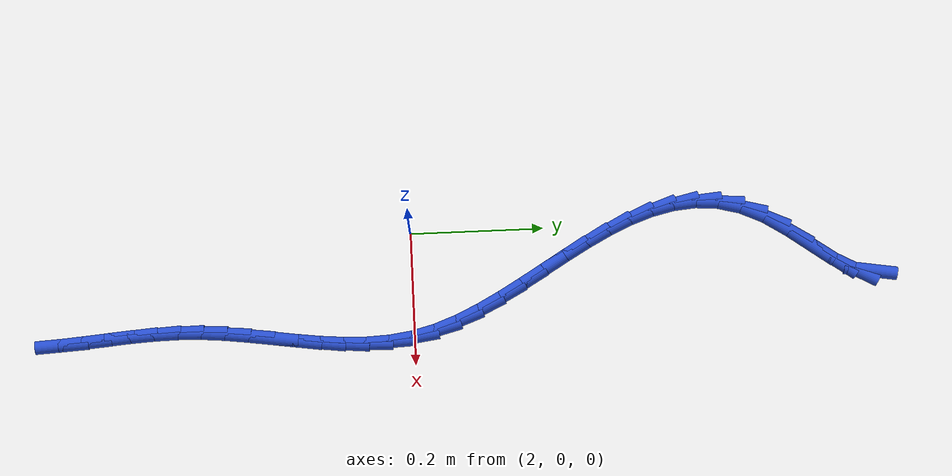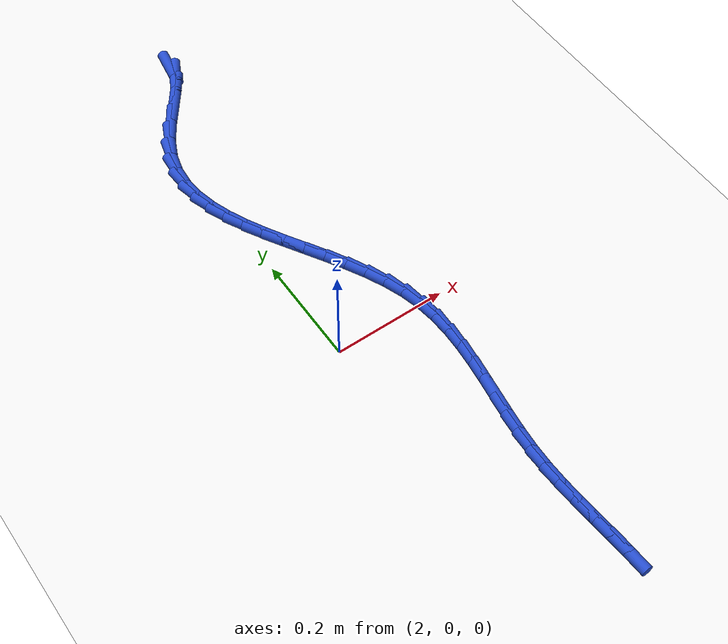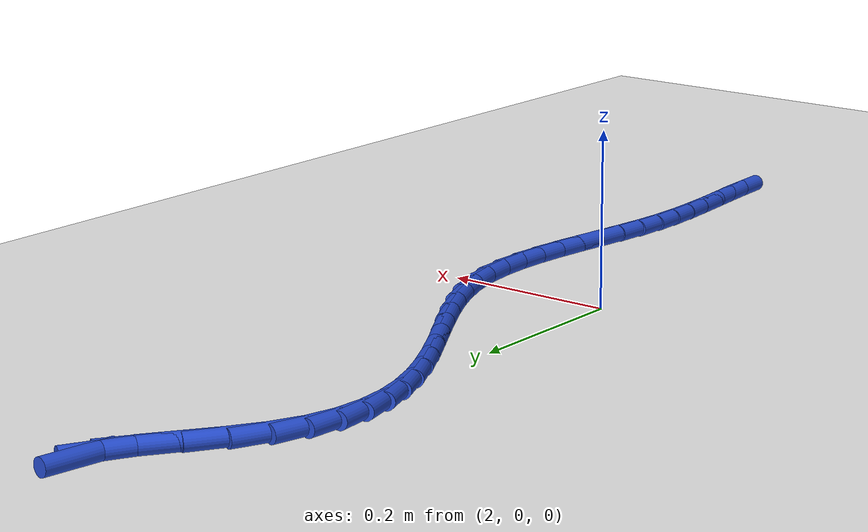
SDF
<sdf version="1.6">
 <world name="default">
  <model name="ground_plane">
   <static>1</static>
   <link name="link">
    <collision name="collision">
     <geometry><plane><normal>0 0 1</normal><size>100 100</size></plane></geometry>
     <surface><friction><ode><mu>100</mu><mu2>50</mu2></ode></friction></surface>
    </collision>
    <visual name="visual">
     <cast_shadows>0</cast_shadows>
     <geometry><plane><normal>0 0 1</normal><size>100 100</size></plane></geometry>
     <material>
      <script><uri>file://media/materials/scripts/gazebo.material</uri><name>Gazebo/WhiteGlow</name></script>
     </material>
    </visual>
   </link>
  </model>
  <model name="line">
   <link name="link_94">
    <pose>2.088357030535048 0.6885284193427649 0.01 0 1.57 1.4103402118649169</pose>
    <collision name="collision">
     <geometry><cylinder><radius>0.01</radius><length>0.08</length></cylinder></geometry>
    </collision>
    <visual name="visual">
     <material>
      <script><name>Gazebo/Blue</name><uri>file://media/materials/scripts/gazebo.material</uri></script>
     </material>
     <geometry><cylinder><radius>0.01</radius><length>0.08</length></cylinder></geometry>
    </visual>
   </link>
   <link name="link_95">
    <pose>2.0844653649804 0.6644831556126869 0.01 0 1.57 1.0691383652856703</pose>
    <collision name="collision">
     <geometry><cylinder><radius>0.01</radius><length>0.08</length></cylinder></geometry>
    </collision>
    <visual name="visual">
     <material>
      <script><name>Gazebo/Blue</name><uri>file://media/materials/scripts/gazebo.material</uri></script>
     </material>
     <geometry><cylinder><radius>0.01</radius><length>0.08</length></cylinder></geometry>
    </visual>
   </link>
   <link name="link_96">
    <pose>2.068807018713709 0.6359333512462519 0.01 0 1.57 0.9520093690729364</pose>
    <collision name="collision">
     <geometry><cylinder><radius>0.01</radius><length>0.08</length></cylinder></geometry>
    </collision>
    <visual name="visual">
     <material>
      <script><name>Gazebo/Blue</name><uri>file://media/materials/scripts/gazebo.material</uri></script>
     </material>
     <geometry><cylinder><radius>0.01</radius><length>0.08</length></cylinder></geometry>
    </visual>
   </link>
   <link name="link_97">
    <pose>2.0461217208490297 0.6040755261188936 0.01 0 1.57 0.9368677235158298</pose>
    <collision name="collision">
     <geometry><cylinder><radius>0.01</radius><length>0.08</length></cylinder></geometry>
    </collision>
    <visual name="visual">
     <material>
      <script><name>Gazebo/Blue</name><uri>file://media/materials/scripts/gazebo.material</uri></script>
     </material>
     <geometry><cylinder><radius>0.01</radius><length>0.08</length></cylinder></geometry>
    </visual>
   </link>
   <link name="link_98">
    <pose>2.0211492005004192 0.5701062001060453 0.01 0 1.57 0.9975466737265667</pose>
    <collision name="collision">
     <geometry><cylinder><radius>0.01</radius><length>0.08</length></cylinder></geometry>
    </collision>
    <visual name="visual">
     <material>
      <script><name>Gazebo/Blue</name><uri>file://media/materials/scripts/gazebo.material</uri></script>
     </material>
     <geometry><cylinder><radius>0.01</radius><length>0.08</length></cylinder></geometry>
    </visual>
   </link>
   <link name="link_99">
    <pose>1.998629186781934 0.5352218930831419 0.01 0 1.57 1.1404848789262199</pose>
    <collision name="collision">
     <geometry><cylinder><radius>0.01</radius><length>0.08</length></cylinder></geometry>
    </collision>
    <visual name="visual">
     <material>
      <script><name>Gazebo/Blue</name><uri>file://media/materials/scripts/gazebo.material</uri></script>
     </material>
     <geometry><cylinder><radius>0.01</radius><length>0.08</length></cylinder></geometry>
    </visual>
   </link>
   <link name="link_100">
    <pose>1.9826823735836065 0.5004792317865284 0.01 0 1.57 1.3186124167887465</pose>
    <collision name="collision">
     <geometry><cylinder><radius>0.01</radius><length>0.08</length></cylinder></geometry>
    </collision>
    <visual name="visual">
     <material>
      <script><name>Gazebo/Blue</name><uri>file://media/materials/scripts/gazebo.material</uri></script>
     </material>
     <geometry><cylinder><radius>0.01</radius><length>0.08</length></cylinder></geometry>
    </visual>
   </link>
   <link name="link_101">
    <pose>1.9738293756064027 0.4661212763586317 0.01 0 1.57 1.4963797127660416</pose>
    <collision name="collision">
     <geometry><cylinder><radius>0.01</radius><length>0.08</length></cylinder></geometry>
    </collision>
    <visual name="visual">
     <material>
      <script><name>Gazebo/Blue</name><uri>file://media/materials/scripts/gazebo.material</uri></script>
     </material>
     <geometry><cylinder><radius>0.01</radius><length>0.08</length></cylinder></geometry>
    </visual>
   </link>
   <link name="link_102">
    <pose>1.9712927758467866 0.43209775027421876 0.01 0 1.57 -1.4820948159209364</pose>
    <collision name="collision">
     <geometry><cylinder><radius>0.01</radius><length>0.08</length></cylinder></geometry>
    </collision>
    <visual name="visual">
     <material>
      <script><name>Gazebo/Blue</name><uri>file://media/materials/scripts/gazebo.material</uri></script>
     </material>
     <geometry><cylinder><radius>0.01</radius><length>0.08</length></cylinder></geometry>
    </visual>
   </link>
   <link name="link_103">
    <pose>1.9742934178715876 0.39835798392174765 0.01 0 1.57 -1.3432490480582326</pose>
    <collision name="collision">
     <geometry><cylinder><radius>0.01</radius><length>0.08</length></cylinder></geometry>
    </collision>
    <visual name="visual">
     <material>
      <script><name>Gazebo/Blue</name><uri>file://media/materials/scripts/gazebo.material</uri></script>
     </material>
     <geometry><cylinder><radius>0.01</radius><length>0.08</length></cylinder></geometry>
    </visual>
   </link>
   <link name="link_104">
    <pose>1.9820521452476363 0.36485130768967544 0.01 0 1.57 -1.2321401590640297</pose>
    <collision name="collision">
     <geometry><cylinder><radius>0.01</radius><length>0.08</length></cylinder></geometry>
    </collision>
    <visual name="visual">
     <material>
      <script><name>Gazebo/Blue</name><uri>file://media/materials/scripts/gazebo.material</uri></script>
     </material>
     <geometry><cylinder><radius>0.01</radius><length>0.08</length></cylinder></geometry>
    </visual>
   </link>
   <link name="link_105">
    <pose>1.9937898015417634 0.33152705196646065 0.01 0 1.57 -1.1479223174732216</pose>
    <collision name="collision">
     <geometry><cylinder><radius>0.01</radius><length>0.08</length></cylinder></geometry>
    </collision>
    <visual name="visual">
     <material>
      <script><name>Gazebo/Blue</name><uri>file://media/materials/scripts/gazebo.material</uri></script>
     </material>
     <geometry><cylinder><radius>0.01</radius><length>0.08</length></cylinder></geometry>
    </visual>
   </link>
   <link name="link_106">
    <pose>2.0087272303207984 0.2983345471405602 0.01 0 1.57 -1.0879521171317528</pose>
    <collision name="collision">
     <geometry><cylinder><radius>0.01</radius><length>0.08</length></cylinder></geometry>
    </collision>
    <visual name="visual">
     <material>
      <script><name>Gazebo/Blue</name><uri>file://media/materials/scripts/gazebo.material</uri></script>
     </material>
     <geometry><cylinder><radius>0.01</radius><length>0.08</length></cylinder></geometry>
    </visual>
   </link>
   <link name="link_107">
    <pose>2.0260852751515714 0.26522312360043243 0.01 0 1.57 -1.049463740129081</pose>
    <collision name="collision">
     <geometry><cylinder><radius>0.01</radius><length>0.08</length></cylinder></geometry>
    </collision>
    <visual name="visual">
     <material>
      <script><name>Gazebo/Blue</name><uri>file://media/materials/scripts/gazebo.material</uri></script>
     </material>
     <geometry><cylinder><radius>0.01</radius><length>0.08</length></cylinder></geometry>
    </visual>
   </link>
   <link name="link_108">
    <pose>2.0450847796009137 0.23214211173453436 0.01 0 1.57 -1.0303535970476188</pose>
    <collision name="collision">
     <geometry><cylinder><radius>0.01</radius><length>0.08</length></cylinder></geometry>
    </collision>
    <visual name="visual">
     <material>
      <script><name>Gazebo/Blue</name><uri>file://media/materials/scripts/gazebo.material</uri></script>
     </material>
     <geometry><cylinder><radius>0.01</radius><length>0.08</length></cylinder></geometry>
    </visual>
   </link>
   <link name="link_109">
    <pose>2.064946587235654 0.19904084193132443 0.01 0 1.57 -1.0294544355291366</pose>
    <collision name="collision">
     <geometry><cylinder><radius>0.01</radius><length>0.08</length></cylinder></geometry>
    </collision>
    <visual name="visual">
     <material>
      <script><name>Gazebo/Blue</name><uri>file://media/materials/scripts/gazebo.material</uri></script>
     </material>
     <geometry><cylinder><radius>0.01</radius><length>0.08</length></cylinder></geometry>
    </visual>
   </link>
   <link name="link_110">
    <pose>2.084891541622624 0.16586864457925965 0.01 0 1.57 -1.0465948675781336</pose>
    <collision name="collision">
     <geometry><cylinder><radius>0.01</radius><length>0.08</length></cylinder></geometry>
    </collision>
    <visual name="visual">
     <material>
      <script><name>Gazebo/Blue</name><uri>file://media/materials/scripts/gazebo.material</uri></script>
     </material>
     <geometry><cylinder><radius>0.01</radius><length>0.08</length></cylinder></geometry>
    </visual>
   </link>
   <link name="link_111">
    <pose>2.1041404863286526 0.1325748500667984 0.01 0 1.57 -1.0825804520969668</pose>
    <collision name="collision">
     <geometry><cylinder><radius>0.01</radius><length>0.08</length></cylinder></geometry>
    </collision>
    <visual name="visual">
     <material>
      <script><name>Gazebo/Blue</name><uri>file://media/materials/scripts/gazebo.material</uri></script>
     </material>
     <geometry><cylinder><radius>0.01</radius><length>0.08</length></cylinder></geometry>
    </visual>
   </link>
   <link name="link_112">
    <pose>2.121914264920571 0.09910878878239801 0.01 0 1.57 -1.139106073777896</pose>
    <collision name="collision">
     <geometry><cylinder><radius>0.01</radius><length>0.08</length></cylinder></geometry>
    </collision>
    <visual name="visual">
     <material>
      <script><name>Gazebo/Blue</name><uri>file://media/materials/scripts/gazebo.material</uri></script>
     </material>
     <geometry><cylinder><radius>0.01</radius><length>0.08</length></cylinder></geometry>
    </visual>
   </link>
   <link name="link_113">
    <pose>2.1374337209652086 0.06541979111451617 0.01 0 1.57 -1.2184947165400932</pose>
    <collision name="collision">
     <geometry><cylinder><radius>0.01</radius><length>0.08</length></cylinder></geometry>
    </collision>
    <visual name="visual">
     <material>
      <script><name>Gazebo/Blue</name><uri>file://media/materials/scripts/gazebo.material</uri></script>
     </material>
     <geometry><cylinder><radius>0.01</radius><length>0.08</length></cylinder></geometry>
    </visual>
   </link>
   <link name="link_114">
    <pose>2.1499196980293975 0.03145718745160983 0.01 0 1.57 -1.3225265891605025</pose>
    <collision name="collision">
     <geometry><cylinder><radius>0.01</radius><length>0.08</length></cylinder></geometry>
    </collision>
    <visual name="visual">
     <material>
      <script><name>Gazebo/Blue</name><uri>file://media/materials/scripts/gazebo.material</uri></script>
     </material>
     <geometry><cylinder><radius>0.01</radius><length>0.08</length></cylinder></geometry>
    </visual>
   </link>
   <link name="link_115">
    <pose>2.1586110618055545 -0.0028283173905937083 0.01 0 1.57 -1.4342434534874293</pose>
    <collision name="collision">
     <geometry><cylinder><radius>0.01</radius><length>0.08</length></cylinder></geometry>
    </collision>
    <visual name="visual">
     <material>
      <script><name>Gazebo/Blue</name><uri>file://media/materials/scripts/gazebo.material</uri></script>
     </material>
     <geometry><cylinder><radius>0.01</radius><length>0.08</length></cylinder></geometry>
    </visual>
   </link>
   <link name="link_116">
    <pose>2.1633668089127855 -0.0374387253483462 0.01 0 1.57 -1.5295056064674644</pose>
    <collision name="collision">
     <geometry><cylinder><radius>0.01</radius><length>0.08</length></cylinder></geometry>
    </collision>
    <visual name="visual">
     <material>
      <script><name>Gazebo/Blue</name><uri>file://media/materials/scripts/gazebo.material</uri></script>
     </material>
     <geometry><cylinder><radius>0.01</radius><length>0.08</length></cylinder></geometry>
    </visual>
   </link>
   <link name="link_117">
    <pose>2.1648078156273405 -0.0723179348800057 0.01 0 1.57 1.5364363782526027</pose>
    <collision name="collision">
     <geometry><cylinder><radius>0.01</radius><length>0.08</length></cylinder></geometry>
    </collision>
    <visual name="visual">
     <material>
      <script><name>Gazebo/Blue</name><uri>file://media/materials/scripts/gazebo.material</uri></script>
     </material>
     <geometry><cylinder><radius>0.01</radius><length>0.08</length></cylinder></geometry>
    </visual>
   </link>
   <link name="link_118">
    <pose>2.1636017072381186 -0.10740627920866408 0.01 0 1.57 1.4806385668123658</pose>
    <collision name="collision">
     <geometry><cylinder><radius>0.01</radius><length>0.08</length></cylinder></geometry>
    </collision>
    <visual name="visual">
     <material>
      <script><name>Gazebo/Blue</name><uri>file://media/materials/scripts/gazebo.material</uri></script>
     </material>
     <geometry><cylinder><radius>0.01</radius><length>0.08</length></cylinder></geometry>
    </visual>
   </link>
   <link name="link_119">
    <pose>2.1604161090340193 -0.14264409155741073 0.01 0 1.57 1.4441701883843392</pose>
    <collision name="collision">
     <geometry><cylinder><radius>0.01</radius><length>0.08</length></cylinder></geometry>
    </collision>
    <visual name="visual">
     <material>
      <script><name>Gazebo/Blue</name><uri>file://media/materials/scripts/gazebo.material</uri></script>
     </material>
     <geometry><cylinder><radius>0.01</radius><length>0.08</length></cylinder></geometry>
    </visual>
   </link>
   <link name="link_120">
    <pose>2.155918646303939 -0.17797170514933758 0.01 0 1.57 1.4263891808583808</pose>
    <collision name="collision">
     <geometry><cylinder><radius>0.01</radius><length>0.08</length></cylinder></geometry>
    </collision>
    <visual name="visual">
     <material>
      <script><name>Gazebo/Blue</name><uri>file://media/materials/scripts/gazebo.material</uri></script>
     </material>
     <geometry><cylinder><radius>0.01</radius><length>0.08</length></cylinder></geometry>
    </visual>
   </link>
   <link name="link_121">
    <pose>2.1507769443367772 -0.21332945320753569 0.01 0 1.57 1.4269184336136067</pose>
    <collision name="collision">
     <geometry><cylinder><radius>0.01</radius><length>0.08</length></cylinder></geometry>
    </collision>
    <visual name="visual">
     <material>
      <script><name>Gazebo/Blue</name><uri>file://media/materials/scripts/gazebo.material</uri></script>
     </material>
     <geometry><cylinder><radius>0.01</radius><length>0.08</length></cylinder></geometry>
    </visual>
   </link>
   <link name="link_122">
    <pose>2.1456586284214314 -0.24865766895509686 0.01 0 1.57 1.4458147335689941</pose>
    <collision name="collision">
     <geometry><cylinder><radius>0.01</radius><length>0.08</length></cylinder></geometry>
    </collision>
    <visual name="visual">
     <material>
      <script><name>Gazebo/Blue</name><uri>file://media/materials/scripts/gazebo.material</uri></script>
     </material>
     <geometry><cylinder><radius>0.01</radius><length>0.08</length></cylinder></geometry>
    </visual>
   </link>
   <link name="link_123">
    <pose>2.1412313238468013 -0.2838966856151106 0.01 0 1.57 1.4835672652827223</pose>
    <collision name="collision">
     <geometry><cylinder><radius>0.01</radius><length>0.08</length></cylinder></geometry>
    </collision>
    <visual name="visual">
     <material>
      <script><name>Gazebo/Blue</name><uri>file://media/materials/scripts/gazebo.material</uri></script>
     </material>
     <geometry><cylinder><radius>0.01</radius><length>0.08</length></cylinder></geometry>
    </visual>
   </link>
   <link name="link_124">
    <pose>2.138162655901784 -0.3189868364106687 0.01 0 1.57 1.5381648875434595</pose>
    <collision name="collision">
     <geometry><cylinder><radius>0.01</radius><length>0.08</length></cylinder></geometry>
    </collision>
    <visual name="visual">
     <material>
      <script><name>Gazebo/Blue</name><uri>file://media/materials/scripts/gazebo.material</uri></script>
     </material>
     <geometry><cylinder><radius>0.01</radius><length>0.08</length></cylinder></geometry>
    </visual>
   </link>
   <link name="link_125">
    <pose>2.1370236605084143 -0.3538792934780004 0.01 0 1.57 -1.5528330367502992</pose>
    <collision name="collision">
     <geometry><cylinder><radius>0.01</radius><length>0.08</length></cylinder></geometry>
    </collision>
    <visual name="visual">
     <material>
      <script><name>Gazebo/Blue</name><uri>file://media/materials/scripts/gazebo.material</uri></script>
     </material>
     <geometry><cylinder><radius>0.01</radius><length>0.08</length></cylinder></geometry>
    </visual>
   </link>
   <link name="link_126">
    <pose>2.1376475698524757 -0.3886080226486443 0.01 0 1.57 -1.5165797112100885</pose>
    <collision name="collision">
     <geometry><cylinder><radius>0.01</radius><length>0.08</length></cylinder></geometry>
    </collision>
    <visual name="visual">
     <material>
      <script><name>Gazebo/Blue</name><uri>file://media/materials/scripts/gazebo.material</uri></script>
     </material>
     <geometry><cylinder><radius>0.01</radius><length>0.08</length></cylinder></geometry>
    </visual>
   </link>
   <link name="link_127">
    <pose>2.1395273212710997 -0.42324517642442633 0.01 0 1.57 -1.4950643395020373</pose>
    <collision name="collision">
     <geometry><cylinder><radius>0.01</radius><length>0.08</length></cylinder></geometry>
    </collision>
    <visual name="visual">
     <material>
      <script><name>Gazebo/Blue</name><uri>file://media/materials/scripts/gazebo.material</uri></script>
     </material>
     <geometry><cylinder><radius>0.01</radius><length>0.08</length></cylinder></geometry>
    </visual>
   </link>
   <link name="link_128">
    <pose>2.1421540299168544 -0.4578631117862057 0.01 0 1.57 -1.4883561910820073</pose>
    <collision name="collision">
     <geometry><cylinder><radius>0.01</radius><length>0.08</length></cylinder></geometry>
    </collision>
    <visual name="visual">
     <material>
      <script><name>Gazebo/Blue</name><uri>file://media/materials/scripts/gazebo.material</uri></script>
     </material>
     <geometry><cylinder><radius>0.01</radius><length>0.08</length></cylinder></geometry>
    </visual>
   </link>
   <link name="link_129">
    <pose>2.145018810942312 -0.49253418571484053 0.01 0 1.57 -1.4963872835518282</pose>
    <collision name="collision">
     <geometry><cylinder><radius>0.01</radius><length>0.08</length></cylinder></geometry>
    </collision>
    <visual name="visual">
     <material>
      <script><name>Gazebo/Blue</name><uri>file://media/materials/scripts/gazebo.material</uri></script>
     </material>
     <geometry><cylinder><radius>0.01</radius><length>0.08</length></cylinder></geometry>
    </visual>
   </link>
   <link name="link_130">
    <pose>2.147612779500043 -0.5273307551911895 0.01 0 1.57 -1.5189981186152042</pose>
    <collision name="collision">
     <geometry><cylinder><radius>0.01</radius><length>0.08</length></cylinder></geometry>
    </collision>
    <visual name="visual">
     <material>
      <script><name>Gazebo/Blue</name><uri>file://media/materials/scripts/gazebo.material</uri></script>
     </material>
     <geometry><cylinder><radius>0.01</radius><length>0.08</length></cylinder></geometry>
    </visual>
   </link>
  </model>
 </world>
</sdf>
